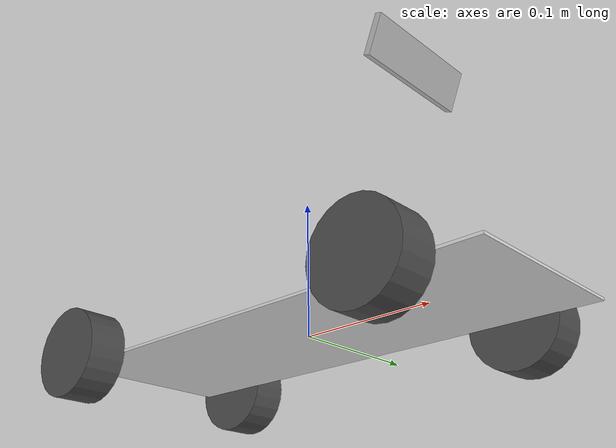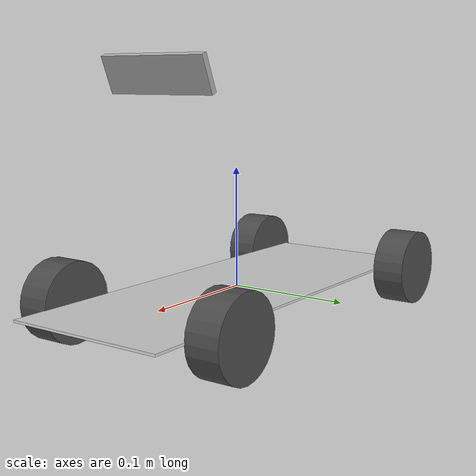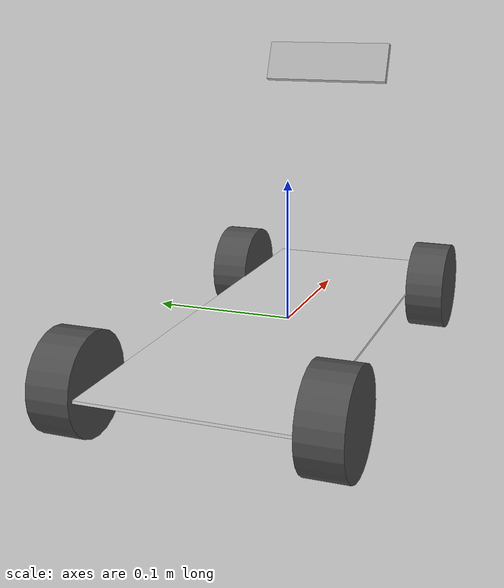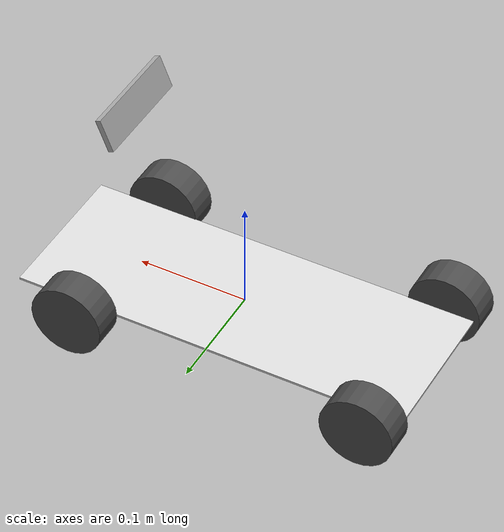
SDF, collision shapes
<?xml version='1.0'?>
<sdf version='1.9'>
  <model name='automobile'>
    <include>
      <uri>model://chassis</uri>
      <pose>0 0 0 0 0 0</pose>
    </include>
    <!-- including a left rear wheel -->
    <include>
      <uri>model://wheel_left</uri>
      <pose>-0.152 0.081 0 0 0 0</pose>
      <name>wheel_rear_left</name>
    </include>
    <!-- including a front rear wheel -->
    <include>
      <uri>model://wheel_right</uri>
      <pose>-0.152 -0.081 0 0 0 0</pose>
      <name>wheel_rear_right</name>
    </include>
    <!-- including a left steering comp. -->
    <include>
      <uri>model://steering_column</uri>
      <pose>0.112 0.0725 0 0 0 0</pose>
      <name>steer_left</name>
    </include>
    <!-- including a right steering comp. -->
    <include>
      <uri>model://steering_column</uri>
      <pose>0.112 -0.0725 0 0 0 0</pose>
      <name>steer_right</name>
    </include>
    <!-- including a left front wheel -->
    <include>
      <uri>model://wheel_left</uri>
      <pose>0.118 0.081 0 0 0 0</pose>
      <name>wheel_front_left</name>
    </include>
    <!-- including a right front wheel -->
    <include>
      <uri>model://wheel_right</uri>
      <pose>0.118 -0.081 0 0 0 0</pose>
      <name>wheel_front_right</name>
    </include>

    <!-- including the camera link -->
    <!-- URDF chain: base_link(rear axle) -> camera_mount (0.18853,0.0025,0.097083 p=0.38397) -> camera_base (+0.02940,0,+0.09646) -->
    <!-- SDF x = URDF_x - 0.152  (rear axle sits at x=-0.152 in SDF model frame) -->
    <include>
      <uri>model://camera</uri>
      <pose>0.09993 0.0025 0.17551 0 0.38397 0</pose>
      <name>camera</name>
    </include>

    <!-- includeing the car body -->
    <include>
      <uri>model://car_body</uri>
      <pose>-0.024 0.0 -0.028 0 0.0 0</pose>
      <name>car_body</name>
    </include>

    <!-- LIST OF JOINTS -->
    <joint name='joint_leftrear_rim' type='revolute'>
      <parent>chassis::link</parent>
      <child>wheel_rear_left::link_rim</child>
      <pose>0 0 0 0 -0 0</pose>
      <axis>
        <xyz>0 0 -1</xyz>
        <limit>
          <lower>-1.79769e+308</lower>
          <upper>1.79769e+308</upper>
          <effort>-1</effort>
          <velocity>-1</velocity>
        </limit>
        <dynamics>
          <spring_reference>0</spring_reference>
          <spring_stiffness>0</spring_stiffness>
          <damping>0</damping>
          <friction>0</friction>
        </dynamics>
      </axis>
      <physics>
        <ode>
          <limit>
            <cfm>0</cfm>
            <erp>0.2</erp>
          </limit>
          <suspension>
            <cfm>0</cfm>
            <erp>0.2</erp>
          </suspension>
        </ode>
      </physics>
    </joint>

    <joint name='joint_rightrear_rim' type='revolute'>
      <parent>chassis::link</parent>
      <child>wheel_rear_right::link_rim</child>
      <pose>0 0 0 0 -0 0</pose>
      <axis>
        <xyz>0 0 -1</xyz>
        <limit>
          <lower>-1.79769e+308</lower>
          <upper>1.79769e+308</upper>
          <effort>-1</effort>
          <velocity>-1</velocity>
        </limit>
        <dynamics>
          <spring_reference>0</spring_reference>
          <spring_stiffness>0</spring_stiffness>
          <damping>0</damping>
          <friction>0</friction>
        </dynamics>
      </axis>
      <physics>
        <ode>
          <limit>
            <cfm>0</cfm>
            <erp>0.2</erp>
          </limit>
          <suspension>
            <cfm>0</cfm>
            <erp>0.2</erp>
          </suspension>
        </ode>
      </physics>
    </joint>

    <!-- Front right joint between the chassis and the steering comp. -->
    <joint name='joint_leftfront_steer' type='revolute'>
      <parent>chassis::link</parent>
      <child>steer_left::link_steer</child>
      <pose>0 0 0.005 0 -0 0</pose>
      <axis>
        <xyz>0 1 0</xyz>
        <limit>
          <lower>-1.79769e+308</lower>
          <upper>1.79769e+308</upper>
          <effort>-1</effort>
          <velocity>-1</velocity>
        </limit>
        <dynamics>
          <spring_reference>0</spring_reference>
          <spring_stiffness>0</spring_stiffness>
          <damping>0</damping>
          <friction>0</friction>
        </dynamics>
      </axis>
      <physics>
        <ode>
          <limit>
            <cfm>0</cfm>
            <erp>0.2</erp>
          </limit>
          <suspension>
            <cfm>0</cfm>
            <erp>0.2</erp>
          </suspension>
        </ode>
      </physics>
    </joint>
    <!-- Front left joint between the chassis and the steering comp. -->
    <joint name='joint_rightfront_steer' type='revolute'>
      <parent>chassis::link</parent>
      <child>steer_right::link_steer</child>
      <pose>0 0 -0.005 0 -0 0</pose>
      <axis>
        <xyz>0 1 0</xyz>
        <limit>
          <lower>-1.79769e+308</lower>
          <upper>1.79769e+308</upper>
          <effort>-1</effort>
          <velocity>-1</velocity>
        </limit>
        <dynamics>
          <spring_reference>0</spring_reference>
          <spring_stiffness>0</spring_stiffness>
          <damping>0</damping>
          <friction>0</friction>
        </dynamics>
      </axis>
      <physics>
        <ode>
          <limit>
            <cfm>0</cfm>
            <erp>0.2</erp>
          </limit>
          <suspension>
            <cfm>0</cfm>
            <erp>0.2</erp>
          </suspension>
        </ode>
      </physics>
    </joint>

    <!-- Right joint between the steering and the rim   -->
    <joint name='joint_rightfront_rim' type='revolute'>
      <parent>steer_right::link_steer</parent>
      <child>wheel_front_right::link_rim</child>
      <pose>0 0 0 0 -0 0</pose>
      <axis>
        <xyz>0 0 -1</xyz>
        <limit>
          <lower>-1.79769e+308</lower>
          <upper>1.79769e+308</upper>
          <effort>-1</effort>
          <velocity>-1</velocity>
        </limit>
        <dynamics>
          <spring_reference>0</spring_reference>
          <spring_stiffness>0</spring_stiffness>
          <damping>0</damping>
          <friction>0</friction>
        </dynamics>
      </axis>
      <physics>
        <ode>
          <limit>
            <cfm>0</cfm>
            <erp>0.2</erp>
          </limit>
          <suspension>
            <cfm>0</cfm>
            <erp>0.2</erp>
          </suspension>
        </ode>
      </physics>
    </joint>

    <!-- Left joint between the steering and the rim   -->
    <joint name='joint_leftfront_rim' type='revolute'>
      <parent>steer_left::link_steer</parent>
      <child>wheel_front_left::link_rim</child>
      <pose>0 0 0 0 -0 0</pose>
      <axis>
        <xyz>0 0 -1</xyz>
        <limit>
          <lower>-1.79769e+308</lower>
          <upper>1.79769e+308</upper>
          <effort>-1</effort>
          <velocity>-1</velocity>
        </limit>
        <dynamics>
          <spring_reference>0</spring_reference>
          <spring_stiffness>0</spring_stiffness>
          <damping>0</damping>
          <friction>0</friction>
        </dynamics>
      </axis>
      <physics>
        <ode>
          <limit>
            <cfm>0</cfm>
            <erp>0.2</erp>
          </limit>
          <suspension>
            <cfm>0</cfm>
            <erp>0.2</erp>
          </suspension>
        </ode>
      </physics>
    </joint>

    <!-- fixed joint for the car body -->
    <joint name='joint_body' type='fixed'>
      <parent>chassis::link</parent>
      <child>car_body::link</child>
      <pose>0 0 0 0 -0 0</pose>
      <physics>
        <ode>
          <limit>
            <cfm>0</cfm>
            <erp>0.2</erp>
          </limit>
          <suspension>
            <cfm>0</cfm>
            <erp>0.2</erp>
          </suspension>
        </ode>
      </physics>
    </joint>

    <!-- fixed joint for the camera -->
    <joint name='joint_camera' type='fixed'>
      <parent>chassis::link</parent>
      <child>camera::link_camera</child>
      <pose>0 0 0 0 -0 0</pose>
      <physics>
        <ode>
          <limit>
            <cfm>0</cfm>
            <erp>0.2</erp>
          </limit>
          <suspension>
            <cfm>0</cfm>
            <erp>0.2</erp>
          </suspension>
        </ode>
      </physics>
    </joint>

    <!-- Plugin  -->
    <plugin name='carlikerobot::CCarLikeRobotRosPlugin' filename='libcar_plugin.so'>
      <wheelbase>0.26</wheelbase>
      <axletrack>0.162</axletrack>
      <wheelradius>0.0325</wheelradius>
      <speed_wheel_joints>
        <front_wheel_joints>
          <leftjoint>joint_leftfront_rim</leftjoint>
          <rightjoint>joint_rightfront_rim</rightjoint>
        </front_wheel_joints>
        <rear_wheel_joints>
          <leftjoint>joint_leftrear_rim</leftjoint>
          <rightjoint>joint_rightrear_rim</rightjoint>
        </rear_wheel_joints>
        <kp>0.01</kp>
        <ki>0.0</ki>
        <kd>0.0</kd>
      </speed_wheel_joints>
      <steer_wheel_joints>
        <leftjoint>joint_leftfront_steer</leftjoint>
        <rightjoint>joint_rightfront_steer</rightjoint>
        <kp>10</kp>
        <ki>0.0</ki>
        <kd>0.1</kd>
      </steer_wheel_joints>
      <initial_steer>0.0</initial_steer>
      <initial_speed>0.0</initial_speed>
      <robotNamespace>/</robotNamespace>
    </plugin>

    <plugin name='bno055::BNO055' filename='libbno055_plugin.so'> </plugin>
    <plugin name='gps::GPS' filename='libgps_plugin.so'> </plugin>

    <!-- Encoder odometry from wheel joint velocities -->
    <plugin filename="gz-sim-odometry-publisher-system"
            name="gz::sim::systems::OdometryPublisher">
      <odom_topic>/encoder_odom</odom_topic>
      <odom_frame>odom</odom_frame>
      <robot_base_frame>automobile</robot_base_frame>
      <update_frequency>50</update_frequency>
      <publish_tf>false</publish_tf>
    </plugin>

  </model>
</sdf>

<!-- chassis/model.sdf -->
<sdf version='1.9'>
  <model name='chassis'>
    <link name='link'>
      <inertial>
        <mass>0.26244</mass>
        <inertia>
          <ixx>0.00283444</ixx>
          <ixy>0</ixy>
          <ixz>0</ixz>
          <iyy>0.00039867</iyy>
          <iyz>0</iyz>
          <izz>0.00323293</izz>
        </inertia>
        <pose>0 0 0 0 -0 0</pose>
      </inertial>
      <pose>0 0 0 0 0 1.5708</pose>
      <gravity>1</gravity>
      <kinematic>0</kinematic>
      <enable_wind>0</enable_wind>
      <visual name='visual'>
        <pose>0 0 -0.0065 0 0 -1.57079</pose>
        <geometry>
          <mesh>
            <uri>model://chassis/meshes/chassisV5.dae</uri>
            <scale>1 1 1</scale>
          </mesh>
        </geometry>
        <material>
          <lighting>1</lighting>
          <shader type='vertex'>
            <normal_map>__default__</normal_map>
          </shader>
          <ambient>0.6 0.6 0.6 1</ambient>
          <diffuse>0.85 0.85 0.85 1</diffuse>
          <specular>0.6 0.6 0.6 1</specular>
          <emissive>0 0 0 1</emissive>
        </material>
        <transparency>0</transparency>
        <cast_shadows>1</cast_shadows>
      </visual>
      <collision name='collision'>
        <laser_retro>0</laser_retro>
        <max_contacts>10</max_contacts>
        <pose>0 0 0 0 -0 0</pose>
        <geometry>
          <box>
            <size>0.135 0.36 0.002</size>
          </box>
        </geometry>
        <surface>
          <friction>
            <ode>
              <mu>1</mu>
              <mu2>1</mu2>
              <fdir1>0 0 0</fdir1>
              <slip1>0</slip1>
              <slip2>0</slip2>
            </ode>
            <torsional>
              <coefficient>1</coefficient>
              <patch_radius>0</patch_radius>
              <surface_radius>0</surface_radius>
              <use_patch_radius>1</use_patch_radius>
              <ode>
                <slip>0</slip>
              </ode>
            </torsional>
          </friction>
          <bounce>
            <restitution_coefficient>0</restitution_coefficient>
            <threshold>1e+06</threshold>
          </bounce>
          <contact>
            <collide_without_contact>0</collide_without_contact>
            <collide_without_contact_bitmask>1</collide_without_contact_bitmask>
            <collide_bitmask>1</collide_bitmask>
            <ode>
              <soft_cfm>0</soft_cfm>
              <soft_erp>0.2</soft_erp>
              <kp>1e+13</kp>
              <kd>1</kd>
              <max_vel>0.01</max_vel>
              <min_depth>0</min_depth>
            </ode>
            <bullet>
              <split_impulse>1</split_impulse>
              <split_impulse_penetration_threshold>-0.01</split_impulse_penetration_threshold>
              <soft_cfm>0</soft_cfm>
              <soft_erp>0.2</soft_erp>
              <kp>1e+13</kp>
              <kd>1</kd>
            </bullet>
          </contact>
        </surface>
      </collision>

      <!-- BNO055-equivalent IMU: orientation + angular velocity + linear acceleration -->
      <!-- URDF: base_link_to_imu_joint xyz="0.11 0 0.0145"  →  SDF x = 0.11 - 0.152 = -0.042 -->
      <sensor name="automobile_imu" type="imu">
        <always_on>1</always_on>
        <update_rate>100</update_rate>
        <topic>/automobile/imu/data</topic>
        <pose>-0.042 0 0.0145 0 0 0</pose>
        <imu>
          <angular_velocity>
            <x><noise type="gaussian"><mean>0.0</mean><stddev>0.002</stddev></noise></x>
            <y><noise type="gaussian"><mean>0.0</mean><stddev>0.002</stddev></noise></y>
            <z><noise type="gaussian"><mean>0.0</mean><stddev>0.002</stddev></noise></z>
          </angular_velocity>
          <linear_acceleration>
            <x><noise type="gaussian"><mean>0.0</mean><stddev>0.05</stddev></noise></x>
            <y><noise type="gaussian"><mean>0.0</mean><stddev>0.05</stddev></noise></y>
            <z><noise type="gaussian"><mean>0.0</mean><stddev>0.05</stddev></noise></z>
          </linear_acceleration>
        </imu>
      </sensor>

    </link>
  </model>
</sdf>

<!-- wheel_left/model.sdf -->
<sdf version='1.9'>
  <model name='wheel_left'>

    <link name='link_rim'>
      <inertial>
        <mass>0.038</mass>
        <inertia>
          <ixx>0.00001283</ixx>
          <ixy>0</ixy>
          <ixz>0</ixz>
          <iyy>0.00001283</iyy>
          <iyz>0</iyz>
          <izz>0.00002069</izz>
        </inertia>
        <pose>0 0 0 0 -0 0</pose>
      </inertial>
      <pose>0.0 0.0 0 1.5708 0 0</pose>
      <gravity>1</gravity>
      <kinematic>0</kinematic>
      <enable_wind>0</enable_wind>
      <visual name='visual'>
       <pose>0 0 0 -1.5708 0 0</pose>
       <geometry>
          <mesh>
            <uri>model://wheel_left/meshes/rim.dae</uri>
            <scale>1 1 1</scale>
          </mesh>
        </geometry>
        <material>
          <lighting>1</lighting>
          <shader type='vertex'>
            <normal_map>__default__</normal_map>
          </shader>
          <ambient>0.2 0.2 0.2 1</ambient>
          <diffuse>0.3 0.3 0.3 1</diffuse>
          <specular>0.5 0.5 0.5 1</specular>
          <emissive>0.0 0.0 0.0 0.0</emissive>
        </material>
        <transparency>0</transparency>
        <cast_shadows>1</cast_shadows>
      </visual>
      <collision name='collision'>
        <laser_retro>0</laser_retro>
        <max_contacts>10</max_contacts>
        <pose>0 0 0 0 -0 0</pose>
        <geometry>
          <cylinder>
            <radius>0.033000</radius>
            <length>0.028000</length>
          </cylinder>
        </geometry>
        <surface>
          <friction>
            <ode>
              <mu>0.7</mu>
              <mu2>0.7</mu2>
              <fdir1>0 0 0</fdir1>
              <slip1>0</slip1>
              <slip2>0</slip2>
            </ode>
            <torsional>
              <coefficient>1</coefficient>
              <patch_radius>0</patch_radius>
              <surface_radius>0</surface_radius>
              <use_patch_radius>1</use_patch_radius>
              <ode>
                <slip>0</slip>
              </ode>
            </torsional>
          </friction>
          <bounce>
            <restitution_coefficient>0</restitution_coefficient>
            <threshold>1e+06</threshold>
          </bounce>
          <contact>
            <collide_without_contact>0</collide_without_contact>
            <collide_without_contact_bitmask>1</collide_without_contact_bitmask>
            <collide_bitmask>1</collide_bitmask>
            <ode>
              <soft_cfm>0</soft_cfm>
              <soft_erp>0.2</soft_erp>
              <kp>1e+07</kp>
              <kd>1</kd>
              <max_vel>0.01</max_vel>
              <min_depth>0</min_depth>
            </ode>
            <bullet>
              <split_impulse>1</split_impulse>
              <split_impulse_penetration_threshold>-0.01</split_impulse_penetration_threshold>
              <soft_cfm>0</soft_cfm>
              <soft_erp>0.2</soft_erp>
              <kp>1e+07</kp>
              <kd>1</kd>
            </bullet>
          </contact>
        </surface>
      </collision>
    </link>

  </model>
</sdf>

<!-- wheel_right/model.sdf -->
<sdf version='1.9'>
  <model name='wheel_right'>

    <link name='link_rim'>
      <inertial>
        <mass>0.038</mass>
        <inertia>
          <ixx>0.00001283</ixx>
          <ixy>0</ixy>
          <ixz>0</ixz>
          <iyy>0.00001283</iyy>
          <iyz>0</iyz>
          <izz>0.00002069</izz>
        </inertia>
        <pose>0 0 0 0 -0 0</pose>
      </inertial>
      <pose>0.0 0.0 0 1.5708 0 0</pose>
      <gravity>1</gravity>
      <kinematic>0</kinematic>
      <enable_wind>0</enable_wind>
      <visual name='visual'>
       <pose>0 0 0 -1.5708 0 0</pose>
       <geometry>
          <mesh>
            <uri>model://wheel_right/meshes/rim.dae</uri>
            <scale>1 1 1</scale>
          </mesh>
        </geometry>
        <material>
          <lighting>1</lighting>
          <shader type='vertex'>
            <normal_map>__default__</normal_map>
          </shader>
          <ambient>0.2 0.2 0.2 1</ambient>
          <diffuse>0.3 0.3 0.3 1</diffuse>
          <specular>0.5 0.5 0.5 1</specular>
          <emissive>0.0 0.0 0.0 0.0</emissive>
        </material>
        <transparency>0</transparency>
        <cast_shadows>1</cast_shadows>
      </visual>
      <collision name='collision'>
        <laser_retro>0</laser_retro>
        <max_contacts>10</max_contacts>
        <pose>0 0 0 0 -0 0</pose>
        <geometry>
          <cylinder>
            <radius>0.033000</radius>
            <length>0.028000</length>
          </cylinder>
        </geometry>
        <surface>
          <friction>
            <ode>
              <mu>0.7</mu>
              <mu2>0.7</mu2>
              <fdir1>0 0 0</fdir1>
              <slip1>0</slip1>
              <slip2>0</slip2>
            </ode>
            <torsional>
              <coefficient>1</coefficient>
              <patch_radius>0</patch_radius>
              <surface_radius>0</surface_radius>
              <use_patch_radius>1</use_patch_radius>
              <ode>
                <slip>0</slip>
              </ode>
            </torsional>
          </friction>
          <bounce>
            <restitution_coefficient>0</restitution_coefficient>
            <threshold>1e+06</threshold>
          </bounce>
          <contact>
            <collide_without_contact>0</collide_without_contact>
            <collide_without_contact_bitmask>1</collide_without_contact_bitmask>
            <collide_bitmask>1</collide_bitmask>
            <ode>
              <soft_cfm>0</soft_cfm>
              <soft_erp>0.2</soft_erp>
              <kp>1e+07</kp>
              <kd>1</kd>
              <max_vel>0.01</max_vel>
              <min_depth>0</min_depth>
            </ode>
            <bullet>
              <split_impulse>1</split_impulse>
              <split_impulse_penetration_threshold>-0.01</split_impulse_penetration_threshold>
              <soft_cfm>0</soft_cfm>
              <soft_erp>0.2</soft_erp>
              <kp>1e+07</kp>
              <kd>1</kd>
            </bullet>
          </contact>
        </surface>
      </collision>
    </link>

  </model>
</sdf>

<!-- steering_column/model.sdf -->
<sdf version='1.9'>
  <model name='steering_column'>
    <link name='link_steer'>
      <inertial>
        <mass>0.001</mass>
        <inertia>
          <ixx>0.00014583</ixx>
          <ixy>0</ixy>
          <ixz>0</ixz>
          <iyy>0.00014583</iyy>
          <iyz>0</iyz>
          <izz>0.000125</izz>
        </inertia>
        <pose>0 0 0 0 -0 0</pose>
      </inertial>
      <pose>0 0 0 1.5708 0 0</pose>
      <gravity>1</gravity>
      <self_collide>0</self_collide>
      <kinematic>0</kinematic>
      <enable_wind>0</enable_wind>
      <visual name='visual'>
        <pose>0 0 0 0 -0 0</pose>
        <geometry>
          <cylinder>
            <radius>0.001</radius>
            <length>0.01</length>
          </cylinder>
        </geometry>
        <material>
          <lighting>1</lighting>
          <script>
            <uri>file://media/materials/scripts/gazebo.material</uri>
            <name>Gazebo/Grey</name>
          </script>
          <shader type='vertex'>
            <normal_map>__default__</normal_map>
          </shader>
          <ambient>0.3 0.3 0.3 1</ambient>
          <diffuse>0.7 0.7 0.7 1</diffuse>
          <specular>0.01 0.01 0.01 1</specular>
          <emissive>0 0 0 1</emissive>
        </material>
        <transparency>0</transparency>
        <cast_shadows>1</cast_shadows>
      </visual>
      <collision name='collision'>
        <laser_retro>0</laser_retro>
        <max_contacts>10</max_contacts>
        <pose>0 0 0 0 -0 0</pose>
        <geometry>
          <cylinder>
            <radius>0.001</radius>
            <length>0.01</length>
          </cylinder>
        </geometry>
        <surface>
          <friction>
            <ode>
              <mu>1</mu>
              <mu2>1</mu2>
              <fdir1>0 0 0</fdir1>
              <slip1>0</slip1>
              <slip2>0</slip2>
            </ode>
            <torsional>
              <coefficient>1</coefficient>
              <patch_radius>0</patch_radius>
              <surface_radius>0</surface_radius>
              <use_patch_radius>1</use_patch_radius>
              <ode>
                <slip>0</slip>
              </ode>
            </torsional>
          </friction>
          <bounce>
            <restitution_coefficient>0</restitution_coefficient>
            <threshold>1e+06</threshold>
          </bounce>
          <contact>
            <collide_without_contact>0</collide_without_contact>
            <collide_without_contact_bitmask>1</collide_without_contact_bitmask>
            <collide_bitmask>1</collide_bitmask>
            <ode>
              <soft_cfm>0</soft_cfm>
              <soft_erp>0.2</soft_erp>
              <kp>1e+13</kp>
              <kd>1</kd>
              <max_vel>0.01</max_vel>
              <min_depth>0</min_depth>
            </ode>
            <bullet>
              <split_impulse>1</split_impulse>
              <split_impulse_penetration_threshold>-0.01</split_impulse_penetration_threshold>
              <soft_cfm>0</soft_cfm>
              <soft_erp>0.2</soft_erp>
              <kp>1e+13</kp>
              <kd>1</kd>
            </bullet>
          </contact>
        </surface>
      </collision>
    </link>

  </model>
</sdf>

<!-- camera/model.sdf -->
<sdf version='1.9'>
  <model name='camera'>
    <link name='link_camera'>
      <inertial>
        <mass>0.0052875</mass>
        <inertia>
          <ixx>4.1e-07</ixx>
          <ixy>0</ixy>
          <ixz>0</ixz>
          <iyy>7.9e-07</iyy>
          <iyz>0</iyz>
          <izz>4.1e-07</izz>
        </inertia>
        <pose>0 0 0 0 0 0</pose>
      </inertial>
      <pose>0 0 0 0 0 0</pose>
      <gravity>1</gravity>
      <self_collide>0</self_collide>
      <kinematic>0</kinematic>
      <enable_wind>0</enable_wind>

      <visual name='visual'>
        <pose>0 0 0 0 0 0</pose>
        <geometry>
          <box><size>0.005 0.095 0.03</size></box>
        </geometry>
        <material>
          <ambient>0.3 0.3 0.3 1</ambient>
          <diffuse>0.7 0.7 0.7 1</diffuse>
          <specular>0.01 0.01 0.01 1</specular>
          <emissive>0 0 0 1</emissive>
        </material>
      </visual>

      <collision name='collision'>
        <pose>0 0 0 0 0 0</pose>
        <geometry>
          <box><size>0.005 0.095 0.03</size></box>
        </geometry>
      </collision>

      <!-- ===== RGB Camera originale (backward compatibility) ===== -->
      <sensor type="camera" name="camera1">
        <always_on>1</always_on>
        <update_rate>30.0</update_rate>
        <camera name="head">
          <horizontal_fov>1.085594795</horizontal_fov>
          <image>
            <width>640</width>
            <height>480</height>
            <format>R8G8B8</format>
          </image>
          <clip><near>0.02</near><far>100</far></clip>
          <noise><type>gaussian</type><mean>0.0</mean><stddev>0.0</stddev></noise>
        </camera>
        <topic>/automobile/image_raw</topic>
      </sensor>

      <!-- ===== OAK-D RGB Camera (centro) ===== -->
      <sensor type="camera" name="oak_rgb">
        <always_on>1</always_on>
        <update_rate>30.0</update_rate>
        <pose>0 0 0 0 0 0</pose>
        <camera name="oak_rgb">
          <horizontal_fov>1.085594795</horizontal_fov>
          <image>
            <width>640</width>
            <height>480</height>
            <format>R8G8B8</format>
          </image>
          <clip><near>0.02</near><far>100</far></clip>
          <noise><type>gaussian</type><mean>0.0</mean><stddev>0.0</stddev></noise>
        </camera>
        <topic>/oak/rgb/image_raw</topic>
      </sensor>

      <!-- ===== OAK-D Depth Camera ===== -->
      <sensor type="depth_camera" name="oak_depth">
        <always_on>1</always_on>
        <update_rate>30.0</update_rate>
        <pose>0 0 0 0 0 0</pose>
        <camera name="oak_depth">
          <horizontal_fov>1.085594795</horizontal_fov>
          <image>
            <width>640</width>
            <height>480</height>
            <format>R_FLOAT32</format>
          </image>
          <clip><near>0.1</near><far>10.0</far></clip>
          <noise><type>gaussian</type><mean>0.0</mean><stddev>0.005</stddev></noise>
        </camera>
        <topic>/oak/stereo/image_raw</topic>
      </sensor>

      <!-- ===== OAK-D Mono LEFT (offset -3.75cm su Y) ===== -->
      <sensor type="camera" name="oak_left">
        <always_on>1</always_on>
        <update_rate>30.0</update_rate>
        <pose>0 0.0375 0 0 0 0</pose>
        <camera name="oak_left">
          <horizontal_fov>1.3962634</horizontal_fov>
          <image>
            <width>640</width>
            <height>400</height>
            <format>R8G8B8</format>
          </image>
          <clip><near>0.02</near><far>100</far></clip>
          <noise><type>gaussian</type><mean>0.0</mean><stddev>0.007</stddev></noise>
        </camera>
        <topic>/oak/left/image_raw</topic>
      </sensor>

      <!-- ===== OAK-D Mono RIGHT (offset +3.75cm su Y) ===== -->
      <sensor type="camera" name="oak_right">
        <always_on>1</always_on>
        <update_rate>30.0</update_rate>
        <pose>0 -0.0375 0 0 0 0</pose>
        <camera name="oak_right">
          <horizontal_fov>1.3962634</horizontal_fov>
          <image>
            <width>640</width>
            <height>400</height>
            <format>R8G8B8</format>
          </image>
          <clip><near>0.02</near><far>100</far></clip>
          <noise><type>gaussian</type><mean>0.0</mean><stddev>0.007</stddev></noise>
        </camera>
        <topic>/oak/right/image_raw</topic>
      </sensor>

      <!-- ===== OAK-D Built-in IMU (BNO085: accel + gyro + orientation) ===== -->
      <sensor name="oak_imu" type="imu">
        <always_on>1</always_on>
        <update_rate>100</update_rate>
        <topic>/oak/imu/data</topic>
        <imu>
          <angular_velocity>
            <x><noise type="gaussian"><mean>0.0</mean><stddev>0.001</stddev></noise></x>
            <y><noise type="gaussian"><mean>0.0</mean><stddev>0.001</stddev></noise></y>
            <z><noise type="gaussian"><mean>0.0</mean><stddev>0.001</stddev></noise></z>
          </angular_velocity>
          <linear_acceleration>
            <x><noise type="gaussian"><mean>0.0</mean><stddev>0.03</stddev></noise></x>
            <y><noise type="gaussian"><mean>0.0</mean><stddev>0.03</stddev></noise></y>
            <z><noise type="gaussian"><mean>0.0</mean><stddev>0.03</stddev></noise></z>
          </linear_acceleration>
        </imu>
      </sensor>

    </link>
  </model>
</sdf>

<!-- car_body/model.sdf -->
<sdf version='1.9'>
  <model name='body'>
    <link name='link'>
      <inertial>
        <mass>1</mass>
        <inertia>
          <ixx>0.166667</ixx>
          <ixy>0</ixy>
          <ixz>0</ixz>
          <iyy>0.166667</iyy>
          <iyz>0</iyz>
          <izz>0.166667</izz>
        </inertia>
      </inertial>
      <pose>0 -0 0 0 -0 0</pose>
      <visual name='visual'>
        <pose>0 0 0 0 -0 0</pose>
        <geometry>
          <mesh>
            <uri>model://car_body/meshes/CarBody.dae</uri>
            <scale>1 1 1</scale>
          </mesh>
        </geometry>
        <material>
          <diffuse>0.3 0.5 0.3 1.0</diffuse>
          <specular>0.9 0.9 0.9 1.0</specular>
        </material>
        <transparency>0</transparency>
        <cast_shadows>1</cast_shadows>
      </visual>
    </link>
    <static>0</static>
    <allow_auto_disable>1</allow_auto_disable>
  </model>
</sdf>
